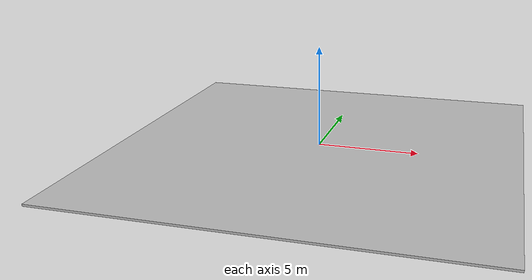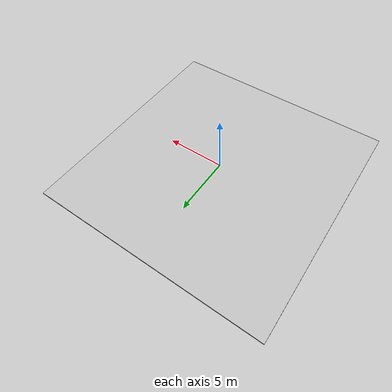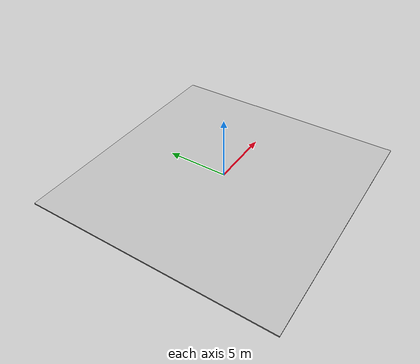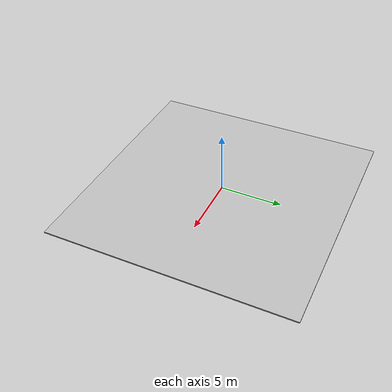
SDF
<?xml version="1.0" ?>
<sdf version="1.5">
  <model name="IARC Floor">
    <pose> 0 0 -0.1 0 0 0 </pose>
    <static>true</static>
    <link name="link">
      <collision name="collision">
        <geometry>
          <box>
            <size>20 20 .1</size>
          </box>
        </geometry>
      </collision>
      <visual name="visual">
        <cast_shadows>false</cast_shadows>
        <geometry>
          <box>
            <size>20 20 .1</size>
          </box>
        </geometry>
        <material>
          <script>
            <uri>model://IARC Floor/materials/scripts</uri>
            <uri>model://IARC Floor/materials/textures</uri>
            <name>vrc/GymFloor</name>
          </script>
	  <pose> 0.5 0.5 0 0 0 0 </pose>
        </material>
      </visual>
    </link>
  </model>
</sdf>
